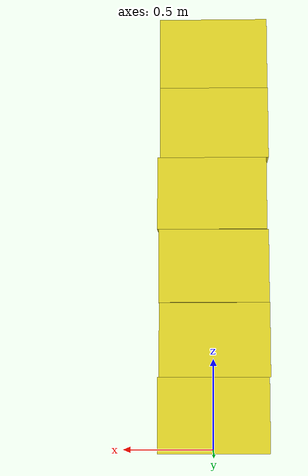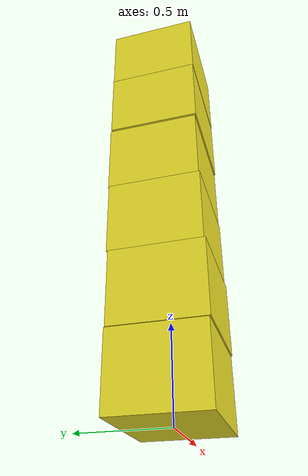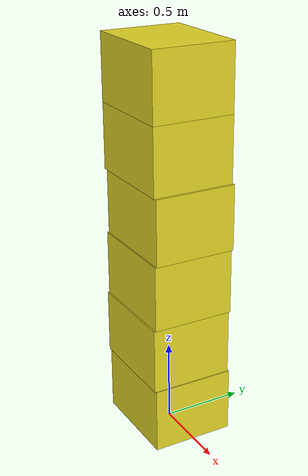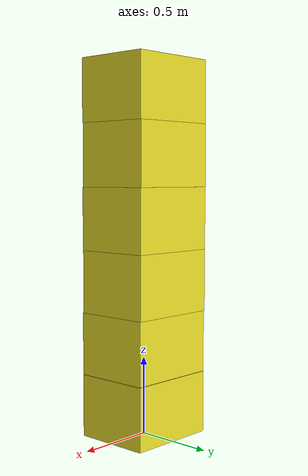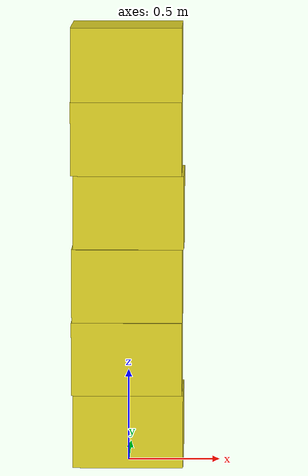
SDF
<?xml version="1.0" encoding="UTF-8"?>
<sdf version='1.4'>
   <model name="baggage_C_x6">
      <model name="baggage_C_0">
         <static>true</static>
         <link name="link">
               <collision name="collision">
                  <geometry>
                     <box>
                        <size>0.6 0.5 0.4</size>
                     </box>
                  </geometry>
               </collision>
               <visual name="visual">
                  <geometry>
                     <box>
                        <size>0.6 0.5 0.4</size>
                     </box>
                  </geometry>
                  <material>
                     <script>
                        <uri>file://media/materials/scripts/gazebo.material</uri>
                        <name>Gazebo/Yellow</name>
                     </script>
                  </material>
               </visual>
            </link>
            <pose frame=''>0 0 0.2 0 0 0</pose>
      </model>
      <model name="baggage_C_1">
         <static>true</static>
         <link name="link">
               <collision name="collision">
                  <geometry>
                     <box>
                        <size>0.6 0.5 0.4</size>
                     </box>
                  </geometry>
               </collision>
               <visual name="visual">
                  <geometry>
                     <box>
                        <size>0.6 0.5 0.4</size>
                     </box>
                  </geometry>
                  <material>
                     <script>
                        <uri>file://media/materials/scripts/gazebo.material</uri>
                        <name>Gazebo/Yellow</name>
                     </script>
                  </material>
               </visual>
            </link>
            <pose frame=''>-0.0071 -0.0068 0.6 0 0 0</pose>
      </model>
      <model name="baggage_C_2">
         <static>true</static>
         <link name="link">
               <collision name="collision">
                  <geometry>
                     <box>
                        <size>0.6 0.5 0.4</size>
                     </box>
                  </geometry>
               </collision>
               <visual name="visual">
                  <geometry>
                     <box>
                        <size>0.6 0.5 0.4</size>
                     </box>
                  </geometry>
                  <material>
                     <script>
                        <uri>file://media/materials/scripts/gazebo.material</uri>
                        <name>Gazebo/Yellow</name>
                     </script>
                  </material>
               </visual>
            </link>
            <pose frame=''>-0.0044 0.0019 1.0 0 0 0</pose>
      </model>
      <model name="baggage_C_3">
         <static>true</static>
         <link name="link">
               <collision name="collision">
                  <geometry>
                     <box>
                        <size>0.6 0.5 0.4</size>
                     </box>
                  </geometry>
               </collision>
               <visual name="visual">
                  <geometry>
                     <box>
                        <size>0.6 0.5 0.4</size>
                     </box>
                  </geometry>
                  <material>
                     <script>
                        <uri>file://media/materials/scripts/gazebo.material</uri>
                        <name>Gazebo/Yellow</name>
                     </script>
                  </material>
               </visual>
            </link>
            <pose frame=''>0.0037 0.0086 1.4 0 0 0</pose>
      </model>
      <model name="baggage_C_4">
         <static>true</static>
         <link name="link">
               <collision name="collision">
                  <geometry>
                     <box>
                        <size>0.6 0.5 0.4</size>
                     </box>
                  </geometry>
               </collision>
               <visual name="visual">
                  <geometry>
                     <box>
                        <size>0.6 0.5 0.4</size>
                     </box>
                  </geometry>
                  <material>
                     <script>
                        <uri>file://media/materials/scripts/gazebo.material</uri>
                        <name>Gazebo/Yellow</name>
                     </script>
                  </material>
               </visual>
            </link>
            <pose frame=''>-0.0088 0.0010 1.8 0 0 0</pose>
      </model>
      <model name="baggage_C_5">
         <static>true</static>
         <link name="link">
               <collision name="collision">
                  <geometry>
                     <box>
                        <size>0.6 0.5 0.4</size>
                     </box>
                  </geometry>
               </collision>
               <visual name="visual">
                  <geometry>
                     <box>
                        <size>0.6 0.5 0.4</size>
                     </box>
                  </geometry>
                  <material>
                     <script>
                        <uri>file://media/materials/scripts/gazebo.material</uri>
                        <name>Gazebo/Yellow</name>
                     </script>
                  </material>
               </visual>
            </link>
            <pose frame=''>-0.0069 -0.0007 2.2 0 0 0</pose>
      </model>
   </model>
</sdf>
